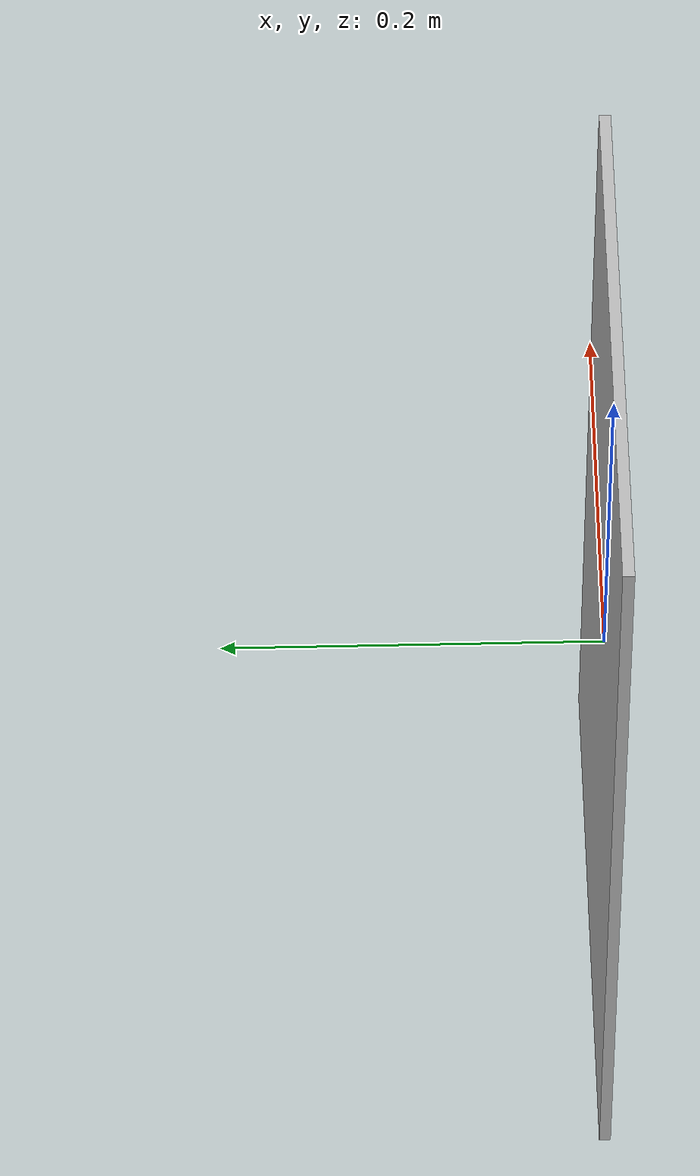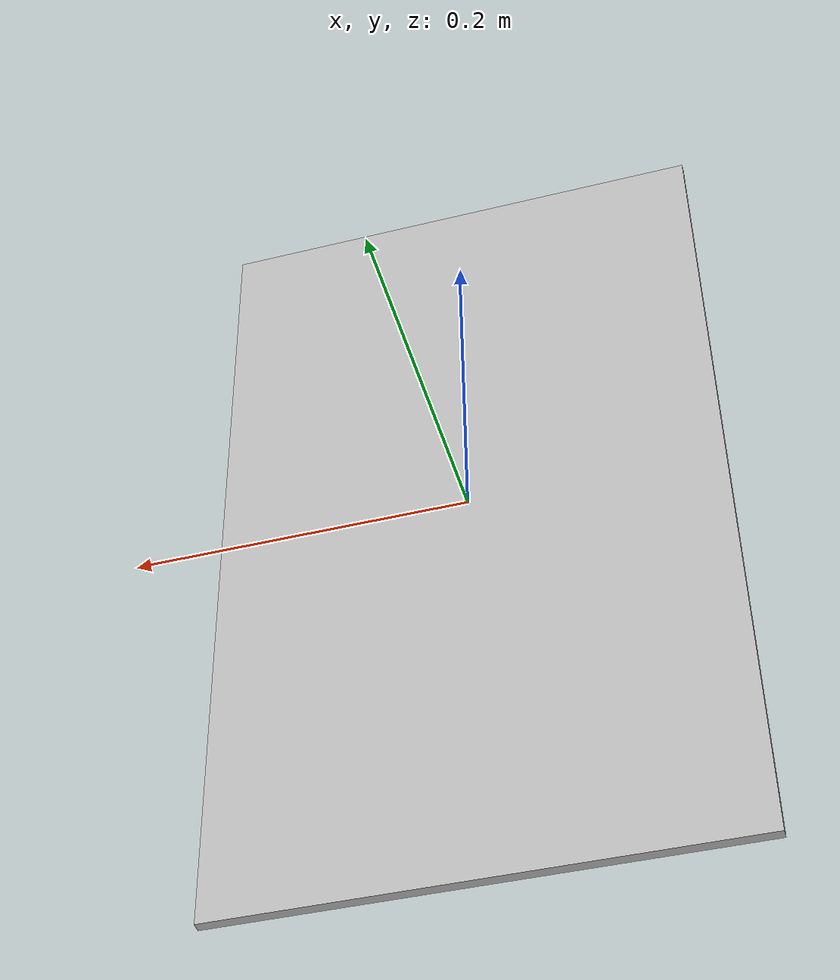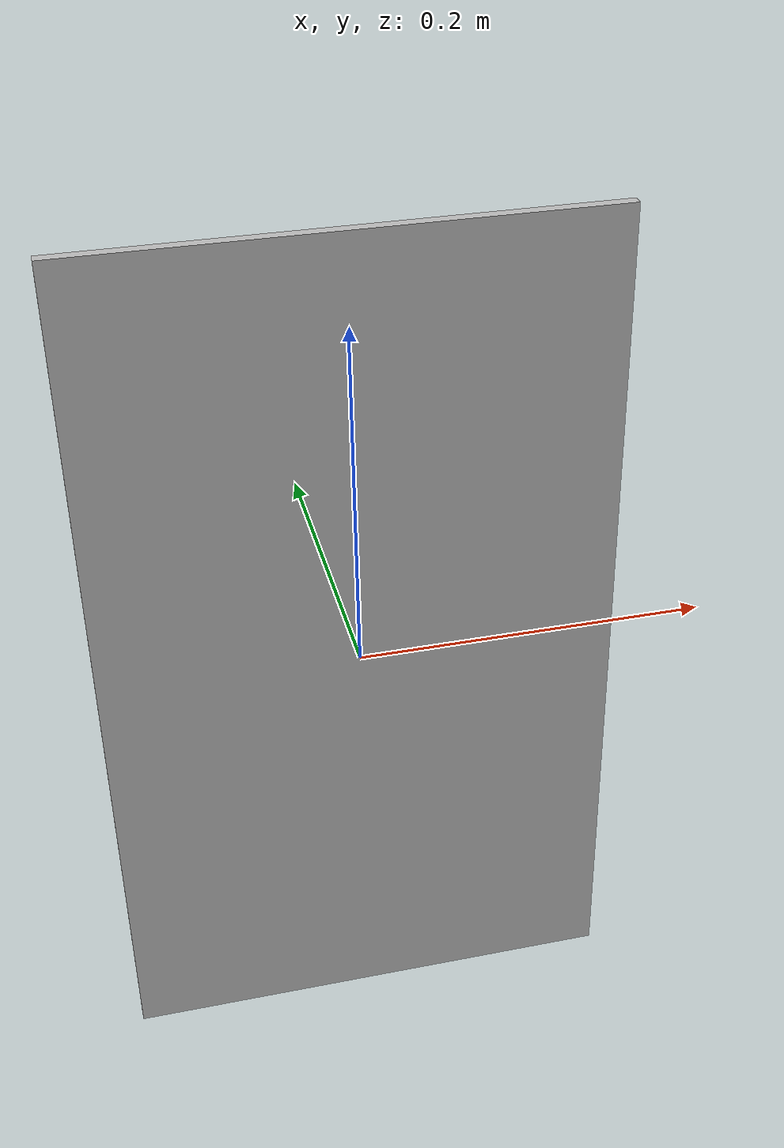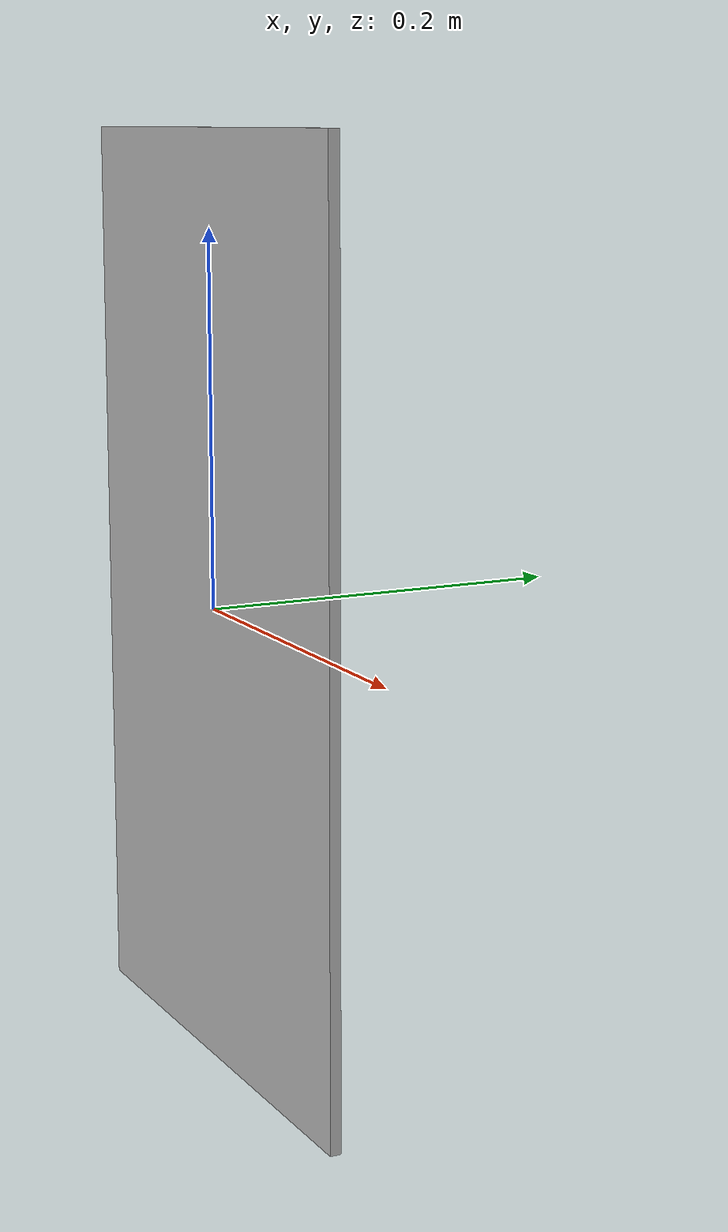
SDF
<?xml version="1.0" ?>
<sdf version="1.5">
  <model name="Cow">
    <static>true</static>
    <link name="link">
      <pose>0 0 0 0 0 0</pose>
      <collision name="collision">
        <geometry>
          <box>
            <size>.2932 0.0060 .5016</size>
          </box>
        </geometry>
      </collision>
      <visual name="visual">
        <cast_shadows>false</cast_shadows>
        <geometry>
          <box>
            <size>.2932 0.0060 .5016</size>
          </box>
        </geometry>
        <material>
          <script>
            <uri>model://Cow/materials/scripts</uri>
            <uri>model://Cow/materials/textures</uri>
            <name>vrc/Cow</name>
          </script>
        </material>
      </visual>
    </link>
  </model>
</sdf>
